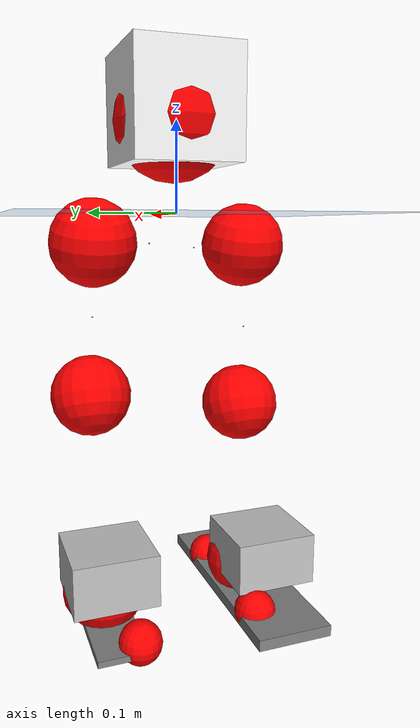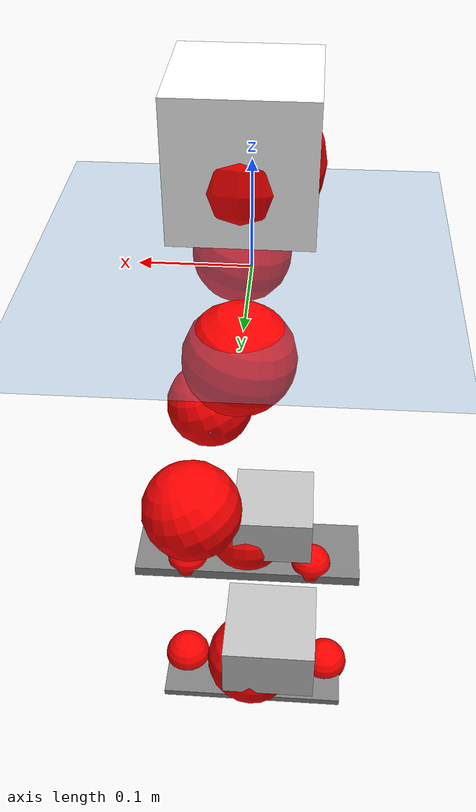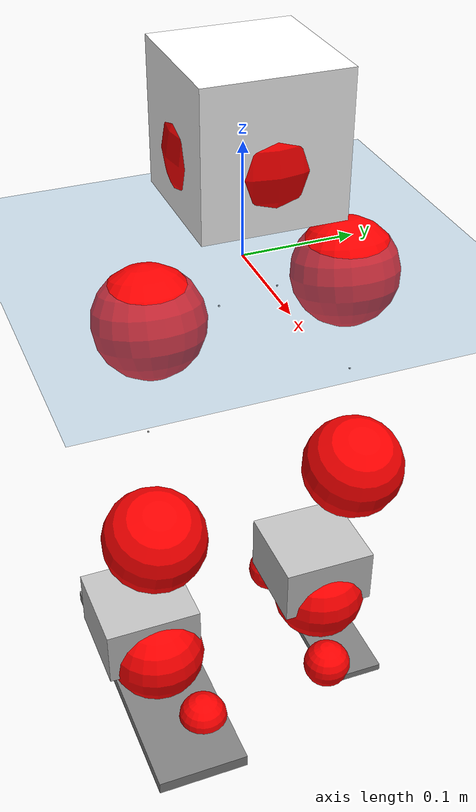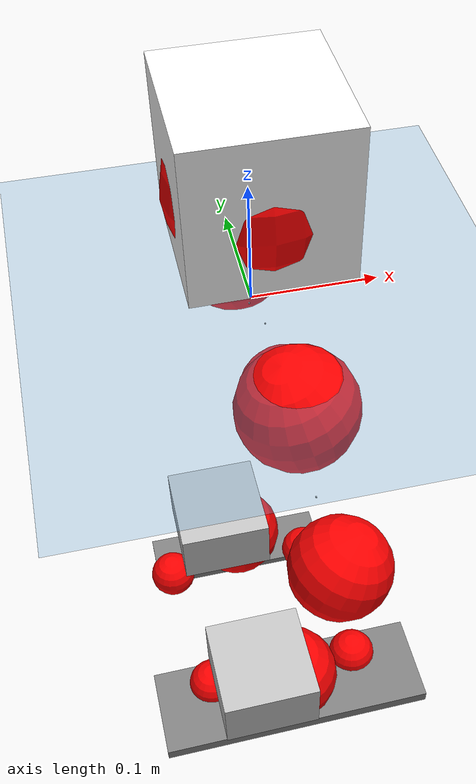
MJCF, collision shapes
<mujoco model="pi_12dof_release_v1">
  <compiler angle="radian" assetdir="assets" balanceinertia="true" inertiafromgeom="false"/>

  <option timestep="0.005" density="1.2" viscosity="2e-05"/>

  <size nkey="1"/>

  <visual>
    <quality shadowsize="8192"/>
    <map shadowclip="0.5"/>
  </visual>

  <default>
    <default class="/">
      <joint armature="0.01" damping="0.01" frictionloss="0.01"/>
      <geom contype="0" conaffinity="0" group="1" solref="-1000 -80"/>
      <site size="0.01 0.005 0.005" group="5"/>
      <general forcelimited="true" biastype="affine" gainprm="20" biasprm="0 -20 -0.5"/>
      <default class="foot">
        <geom size="0.0845 0.036 0.005" type="box" condim="6" group="4" priority="1" friction="0.9 0.2 0.2" solimp="0.015 1 0.005"/>
      </default>
      <default class="reward_collision_sphere">
        <geom group="5" rgba="1 0 0 1"/>
      </default>
    </default>
  </default>

  <asset>
    <texture type="skybox" colorspace="auto" name="//unnamed_texture_0" builtin="gradient" rgb1="0.95 0.95 0.95" rgb2="0.95 0.95 0.95" width="100" height="600"/>
    <texture type="2d" colorspace="auto" name="texplane" builtin="checker" rgb1="0.345 0.575 0.748" rgb2="0.345 0.575 0.748" markrgb="1 1 1" width="512" height="512"/>
    <material name="MatPlane" class="/" texture="texplane" texuniform="true" texrepeat="2 2" specular="0.9"/>
    <mesh name="baselink_1" class="/" file="baselink_1.STL"/>
    <mesh name="r_hip_pitch_link" class="/" file="r_hip_pitch_link.STL"/>
    <mesh name="r_hip_roll_link" class="/" file="r_hip_roll_link.STL"/>
    <mesh name="r_thigh_link" class="/" file="r_thigh_link.STL"/>
    <mesh name="r_calf_link" class="/" file="r_calf_link.STL"/>
    <mesh name="r_ankle_pitch_link" class="/" file="r_ankle_pitch_link.STL"/>
    <mesh name="r_ankle_roll_link" class="/" file="r_ankle_roll_link.STL"/>
    <mesh name="l_hip_pitch_link" class="/" file="l_hip_pitch_link.STL"/>
    <mesh name="l_hip_roll_link" class="/" file="l_hip_roll_link.STL"/>
    <mesh name="l_thigh_link" class="/" file="l_thigh_link.STL"/>
    <mesh name="l_calf_link" class="/" file="l_calf_link.STL"/>
    <mesh name="l_ankle_pitch_link" class="/" file="l_ankle_pitch_link.STL"/>
    <mesh name="l_ankle_roll_link" class="/" file="l_ankle_roll_link.STL"/>
  </asset>

  <worldbody>
    <geom name="floor" class="/" size="100 100 0.125" type="plane" group="0" material="MatPlane"/>
    <light name="toplight_shadow" class="/" pos="0 0 5" dir="0.0990148 0.0990148 -0.990148" type="directional" ambient="0.04 0.04 0.04" diffuse="0.55 0.55 0.55" specular="0.12 0.12 0.12"/>
    <light name="toplight_fill" class="/" pos="0 0 5" dir="0.0990148 0.0990148 -0.990148" type="directional" castshadow="false" ambient="0.04 0.04 0.04" diffuse="0.3 0.3 0.3" specular="0.08 0.08 0.08"/>
    <body name="trunk" pos="0.00564099 0.00125086 0.00314991" quat="0.999997 -0.00186589 -0.00138307 -0.000133628">
      <inertial pos="0.00612409 -0.00391971 0.0579448" quat="0.690577 0.00681373 -0.0248724 0.722799" mass="3.89931" diaginertia="0.0157047 0.0165741 0.0172109"/>
      <joint name="//unnamed_joint_0" type="free"/>
      <geom name="//unnamed_geom_1" class="/" type="mesh" density="0" rgba="1 1 1 1" mesh="baselink_1"/>
      <geom name="//unnamed_geom_2" class="/" size="0.0605257 0.0605257 0.0605257" pos="0 0 0.109585" type="box" rgba="1 1 1 1"/>
      <geom name="//unnamed_geom_3" class="reward_collision_sphere" size="0.0665783" pos="0 0 0.0958872"/>
      <site name="imu" class="/" pos="-0.0186306 0.0539867 0.0070472" size="0.0121051"/>
      <camera name="track" class="/" pos="0 -2.26063 0" quat="0.707107 0.707107 0 0" mode="trackcom"/>
      <camera name="ego_camera" class="/" pos="0.0848557 0 0.246567" quat="-0.5 -0.5 0.5 0.5"/>
      <body name="r_hip_pitch_link" pos="0.00363292 -0.0257151 -0.0415341" quat="0.992223 -0.00144666 -0.124363 0.0049926">
        <inertial pos="0.00426572 -0.0631721 0.00073276" quat="-0.0386258 0.718749 -0.0386186 0.693121" mass="0.584676" diaginertia="0.000177433 0.000161759 0.000340792"/>
        <joint name="r_hip_pitch_joint" class="/" pos="0 0 0" axis="0.00983383 -0.99995 -0.00197718" stiffness="0.0412518" range="-1.70438 1.2951" armature="0.0142525" damping="0.0313726" frictionloss="0.0118451"/>
        <geom name="//unnamed_geom_4" class="/" type="mesh" density="0" rgba="0.75294 0.75294 0.75294 1" mesh="r_hip_pitch_link"/>
        <geom name="//unnamed_geom_5" class="/" size="0.000605257 0.000605257 0.000605257" type="box" rgba="0.75294 0.75294 0.75294 1"/>
        <body name="r_hip_roll_link" pos="0.005594 -0.0632334 0.000263163" quat="0.999999 0.000827329 -0.0003604 -0.000827665">
          <inertial pos="-0.00150243 0.00909788 -0.0725266" quat="0.707434 -0.0782368 -0.081043 0.697745" mass="0.697833" diaginertia="0.000641782 0.000549239 0.000639717"/>
          <joint name="r_hip_roll_joint" class="/" pos="0 0 0" axis="-0.999597 0.00164976 -0.02833" stiffness="0.0184581" range="-0.0799848 0.323559" armature="0.0112935" damping="0.0116014" frictionloss="0.0127013"/>
          <geom name="//unnamed_geom_6" class="/" type="mesh" density="0" rgba="0.75294 0.75294 0.75294 1" mesh="r_hip_roll_link"/>
          <geom name="//unnamed_geom_7" class="/" size="0.000605257 0.000605257 0.000605257" type="box" rgba="0.75294 0.75294 0.75294 1"/>
          <geom name="//unnamed_geom_8" class="reward_collision_sphere" size="0.0484206"/>
          <body name="r_thigh_link" pos="-0.0111884 -0.00954557 -0.100414" quat="1 0.000419753 0.000348969 1.64997e-05">
            <inertial pos="0.000972965 0.00506821 -0.0703678" quat="0.737113 0.675769 6.26929e-05 -0.000570474" mass="0.181659" diaginertia="0.000220678 0.000177747 0.000285308"/>
            <joint name="r_thigh_joint" class="/" pos="0 0 0" axis="0.00304325 0.0231963 -0.999726" range="-0.312652 0.548124" armature="0.0125763" damping="0.0305999" frictionloss="0.0186836"/>
            <geom name="//unnamed_geom_9" class="/" type="mesh" density="0" rgba="0.75294 0.75294 0.75294 1" mesh="r_thigh_link"/>
            <geom name="//unnamed_geom_10" class="/" size="0.000605257 0.000605257 0.000605257" type="box" rgba="0.75294 0.75294 0.75294 1"/>
            <body name="r_calf_link" pos="-0.00276752 -0.00606878 -0.105706" quat="0.947634 -1.33464e-05 0.319357 4.79665e-05">
              <inertial pos="-0.000269963 0.0039726 -0.0952302" quat="0.998793 -0.0343766 0.0244811 0.0251486" mass="1.26934" diaginertia="0.00600293 0.00555167 0.00075029"/>
              <joint name="r_calf_joint" class="/" pos="0 0 0" axis="-0.00346466 -0.999993 0.00136077" stiffness="0.0411828" range="-1.82459 0.661939" armature="0.0163866" damping="0.0136901" frictionloss="0.0110528"/>
              <geom name="//unnamed_geom_11" class="/" type="mesh" density="0" rgba="0.75294 0.75294 0.75294 1" mesh="r_calf_link"/>
              <geom name="//unnamed_geom_12" class="/" size="0.000605257 0.000605257 0.000605257" type="box" rgba="0.75294 0.75294 0.75294 1"/>
              <geom name="//unnamed_geom_13" class="reward_collision_sphere" size="0.0484206"/>
              <body name="r_ankle_pitch_link" pos="-0.00265998 0.00306722 -0.184818" quat="0.980131 -0.000161725 -0.198351 -7.41876e-05">
                <inertial pos="0.00348566 0.00419767 0.00951719" quat="0.0332407 0.73453 -0.0237173 0.677346" mass="0.273284" diaginertia="0.000525742 0.000360255 0.000508569"/>
                <joint name="r_ankle_pitch_joint" class="/" pos="0 0 0" axis="0.00751704 -0.999971 -0.000963017" range="-1.2898 0.296491" armature="0.0118556" damping="0.0040344" frictionloss="0.00733848"/>
                <geom name="//unnamed_geom_14" class="/" type="mesh" density="0" rgba="0.75294 0.75294 0.75294 1" mesh="r_ankle_pitch_link"/>
                <geom name="//unnamed_geom_15" class="/" size="0.0472101 0.0484206 0.0302629" type="box" rgba="0.75294 0.75294 0.75294 1"/>
                <body name="r_ankle_roll_link" pos="0.0878697 0.0062876 0.00324203" quat="1 0.000256574 -0.000213456 -0.000661211">
                  <inertial pos="-0.026672 0.00254593 -0.030964" quat="0.56587 0.42074 0.424139 0.56822" mass="1.13277" diaginertia="0.00232947 0.00188055 0.00172284"/>
                  <joint name="r_ankle_roll_joint" class="/" pos="0 0 0" axis="-0.999084 -0.023913 0.0354842" range="-0.252315 0.309788" armature="0.0180521" damping="0" frictionloss="0.0143404"/>
                  <geom name="//unnamed_geom_16" class="/" type="mesh" density="0" rgba="0.75294 0.75294 0.75294 1" mesh="r_ankle_roll_link"/>
                  <geom name="//unnamed_geom_17" class="/" type="mesh" rgba="0.75294 0.75294 0.75294 1" mesh="r_ankle_roll_link"/>
                  <geom name="right_foot" class="foot" size="0.137442 0.0446019 0.00653631" pos="-0.0577019 0 -0.060272"/>
                  <geom name="//unnamed_geom_19" class="reward_collision_sphere" size="0.0484206" pos="-0.0565705 0 -0.0273963"/>
                  <geom name="//unnamed_geom_20" class="reward_collision_sphere" size="0.0242103" pos="0.0169711 0.0226063 -0.0547927"/>
                  <geom name="//unnamed_geom_21" class="reward_collision_sphere" size="0.0242103" pos="-0.135769 0.0226063 -0.0547927"/>
                  <site name="right_foot" class="foot" pos="-0.0577019 0 -0.060272" size="0.0121051"/>
                </body>
              </body>
            </body>
          </body>
        </body>
      </body>
      <body name="l_hip_pitch_link" pos="-0.00145928 0.0292209 -0.0362014" quat="0.992138 -0.000812296 -0.125146 -0.000207296">
        <inertial pos="0.000614316 0.0591161 0.00827828" quat="-0.0348882 0.707341 0.0243318 0.705592" mass="0.605045" diaginertia="0.00021075 0.000202465 0.000487546"/>
        <joint name="l_hip_pitch_joint" class="/" pos="0 0 0" axis="0.0142694 0.999795 -0.0143489" range="-1.36782 1.79171" armature="0.00810438" damping="0.0274885" frictionloss="0.0114098"/>
        <geom name="//unnamed_geom_22" class="/" type="mesh" density="0" rgba="0.75294 0.75294 0.75294 1" mesh="l_hip_pitch_link"/>
        <geom name="//unnamed_geom_23" class="/" size="0.000605257 0.000605257 0.000605257" type="box" rgba="0.75294 0.75294 0.75294 1"/>
        <body name="l_hip_roll_link" pos="-0.000121395 0.0640369 0.0015053" quat="1 0.000213689 -0.000611255 0.000594434">
          <inertial pos="0.00594122 0.00172804 -0.0726387" quat="0.673182 -0.0744386 -0.10203 0.728611" mass="0.664204" diaginertia="0.000671056 0.000510026 0.000668932"/>
          <joint name="l_hip_roll_joint" class="/" pos="0 0 0" axis="-0.999997 0.000538687 0.00243353" range="-0.315988 -0.0151667" armature="0.0143179" damping="0.0571234" frictionloss="0.0122909"/>
          <geom name="//unnamed_geom_24" class="/" type="mesh" density="0" rgba="0.75294 0.75294 0.75294 1" mesh="l_hip_roll_link"/>
          <geom name="//unnamed_geom_25" class="/" size="0.000605257 0.000605257 0.000605257" type="box" rgba="0.75294 0.75294 0.75294 1"/>
          <geom name="//unnamed_geom_26" class="reward_collision_sphere" size="0.0484206"/>
          <body name="l_thigh_link" pos="0.00430778 -0.00237049 -0.0885771" quat="1 -0.000461072 0.000675919 -0.000148904">
            <inertial pos="-0.00391113 0.00295774 -0.0701596" quat="0.697599 0.716327 0.0151727 -0.00102579" mass="0.217087" diaginertia="0.000232945 0.000172076 0.000286213"/>
            <joint name="l_thigh_joint" class="/" pos="0 0 0" axis="-0.0015201 -0.000328873 -0.999999" stiffness="0.0497531" range="-0.58356 0.368448" armature="0.0122625" damping="0.000699122" frictionloss="0.0112363"/>
            <geom name="//unnamed_geom_27" class="/" type="mesh" density="0" rgba="0.75294 0.75294 0.75294 1" mesh="l_thigh_link"/>
            <geom name="//unnamed_geom_28" class="/" size="0.000605257 0.000605257 0.000605257" type="box" rgba="0.75294 0.75294 0.75294 1"/>
            <body name="l_calf_link" pos="-0.00457545 0.00045955 -0.0992674" quat="0.947819 -0.00022078 0.318808 -0.000618771">
              <inertial pos="0.000846371 -0.00397536 -0.0899983" quat="0.999985 0.00286773 -8.25985e-07 0.00459823" mass="1.57855" diaginertia="0.00727002 0.00721584 0.000941992"/>
              <joint name="l_calf_joint" class="/" pos="0 0 0" axis="-0.00650073 0.999966 0.00510574" stiffness="0.0097047" range="-0.858521 1.48008" armature="0.0118234" damping="0.00443453" frictionloss="0.0114251"/>
              <geom name="//unnamed_geom_29" class="/" type="mesh" density="0" rgba="0.75294 0.75294 0.75294 1" mesh="l_calf_link"/>
              <geom name="//unnamed_geom_30" class="/" size="0.000605257 0.000605257 0.000605257" type="box" rgba="0.75294 0.75294 0.75294 1"/>
              <geom name="//unnamed_geom_31" class="reward_collision_sphere" size="0.0484206"/>
              <body name="l_ankle_pitch_link" pos="0.000161307 0.00149999 -0.201273" quat="0.980056 -0.000412082 -0.198719 0.00038486">
                <inertial pos="0.00970685 -0.00660542 3.17313e-06" quat="-0.00337584 0.707236 0.00170057 0.706968" mass="0.370005" diaginertia="0.000601458 0.000436363 0.000574662"/>
                <joint name="l_ankle_pitch_joint" class="/" pos="0 0 0" axis="-0.007011 0.999961 -0.00543488" range="-0.333275 1.29326" armature="0.0158664" damping="0" frictionloss="0.01229"/>
                <geom name="//unnamed_geom_32" class="/" type="mesh" density="0" rgba="0.75294 0.75294 0.75294 1" mesh="l_ankle_pitch_link"/>
                <geom name="//unnamed_geom_33" class="/" size="0.0472101 0.0484206 0.0302629" type="box" rgba="0.75294 0.75294 0.75294 1"/>
                <body name="l_ankle_roll_link" pos="0.0755238 0.00162313 -0.00557173" quat="1 -0.000248496 0.000476844 2.29405e-05">
                  <inertial pos="-0.028847 -0.00111579 -0.0207517" quat="0.55745 0.432688 0.438308 0.556702" mass="1.05385" diaginertia="0.00221945 0.00197871 0.00148728"/>
                  <joint name="l_ankle_roll_joint" class="/" pos="0 0 0" axis="-0.999991 0.00411779 -0.000954159" range="-0.176302 0.156404" armature="0.00837274" damping="0" frictionloss="0.0119674"/>
                  <geom name="//unnamed_geom_34" class="/" type="mesh" density="0" rgba="0.75294 0.75294 0.75294 1" mesh="l_ankle_roll_link"/>
                  <geom name="//unnamed_geom_35" class="/" type="mesh" rgba="0.75294 0.75294 0.75294 1" mesh="l_ankle_roll_link"/>
                  <geom name="left_foot" class="foot" size="0.0947722 0.0286349 0.00364911" pos="-0.0577019 0 -0.060272"/>
                  <geom name="//unnamed_geom_37" class="reward_collision_sphere" size="0.0484206" pos="-0.0565705 0 -0.0273963"/>
                  <geom name="//unnamed_geom_38" class="reward_collision_sphere" size="0.0242103" pos="0.0169711 -0.0226063 -0.0547927"/>
                  <geom name="//unnamed_geom_39" class="reward_collision_sphere" size="0.0242103" pos="-0.135769 -0.0226063 -0.0547927"/>
                  <site name="left_foot" class="foot" pos="-0.0577019 0 -0.060272" size="0.0121051"/>
                </body>
              </body>
            </body>
          </body>
        </body>
      </body>
    </body>
  </worldbody>

  <contact>
    <pair class="/" geom1="floor" geom2="right_foot" name="//unnamed_contact_1"/>
    <pair class="/" geom1="floor" geom2="left_foot" name="//unnamed_contact_0"/>
  </contact>

  <actuator>
    <general name="r_hip_pitch_joint" class="/" joint="r_hip_pitch_joint" forcerange="-25.9919 25.9919" gainprm="23.4611" biasprm="0 -23.4611 -0.687841"/>
    <general name="r_hip_roll_joint" class="/" joint="r_hip_roll_joint" forcerange="-33.1697 33.1697" gainprm="23.4611" biasprm="0 -23.4611 -0.687841"/>
    <general name="r_thigh_joint" class="/" joint="r_thigh_joint" forcerange="-22.2772 22.2772" gainprm="23.4611" biasprm="0 -23.4611 -0.687841"/>
    <general name="r_calf_joint" class="/" joint="r_calf_joint" forcerange="-26.278 26.278" gainprm="23.4611" biasprm="0 -23.4611 -0.687841"/>
    <general name="r_ankle_pitch_joint" class="/" joint="r_ankle_pitch_joint" forcerange="-23.9717 23.9717" gainprm="23.4611" biasprm="0 -23.4611 -0.687841"/>
    <general name="r_ankle_roll_joint" class="/" joint="r_ankle_roll_joint" forcerange="-21.9354 21.9354" gainprm="23.4611" biasprm="0 -23.4611 -0.687841"/>
    <general name="l_hip_pitch_joint" class="/" joint="l_hip_pitch_joint" forcerange="-26.4435 26.4435" gainprm="23.4611" biasprm="0 -23.4611 -0.687841"/>
    <general name="l_hip_roll_joint" class="/" joint="l_hip_roll_joint" forcerange="-18.2533 18.2533" gainprm="23.4611" biasprm="0 -23.4611 -0.687841"/>
    <general name="l_thigh_joint" class="/" joint="l_thigh_joint" forcerange="-33.642 33.642" gainprm="23.4611" biasprm="0 -23.4611 -0.687841"/>
    <general name="l_calf_joint" class="/" joint="l_calf_joint" forcerange="-27.222 27.222" gainprm="23.4611" biasprm="0 -23.4611 -0.687841"/>
    <general name="l_ankle_pitch_joint" class="/" joint="l_ankle_pitch_joint" forcerange="-21.3028 21.3028" gainprm="23.4611" biasprm="0 -23.4611 -0.687841"/>
    <general name="l_ankle_roll_joint" class="/" joint="l_ankle_roll_joint" forcerange="-14.7588 14.7588" gainprm="23.4611" biasprm="0 -23.4611 -0.687841"/>
  </actuator>

  <sensor>
    <gyro site="imu" name="imu_angular_velocity"/>
    <velocimeter site="imu" name="imu_linear_velocity"/>
    <framelinvel objtype="site" objname="left_foot" name="left_foot_global_linear_velocity"/>
    <framelinvel objtype="site" objname="right_foot" name="right_foot_global_linear_velocity"/>
  </sensor>

  <keyframe>
    <key name="home" qpos="0 0 0.291 1 0 0 0 0.4 0 0 -0.8 0.4 0 -0.4 0 0 0.8 -0.4 0"/>
  </keyframe>
</mujoco>
